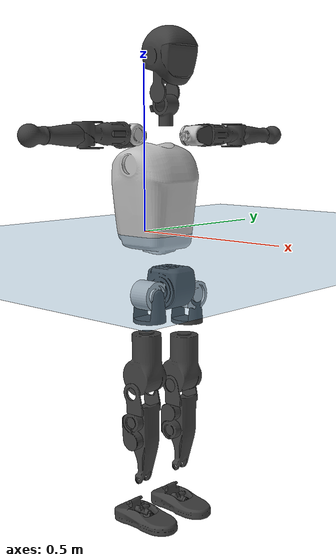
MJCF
<mujoco model="T1">
  <compiler angle="radian" assetdir="assets" balanceinertia="true" inertiafromgeom="false"/>

  <option timestep="0.005" density="1.2" viscosity="2e-05"/>

  <size nkey="1"/>

  <visual>
    <quality shadowsize="8192"/>
    <map shadowclip="0.5"/>
  </visual>

  <default>
    <default class="/">
      <joint armature="0.01" damping="0.01" frictionloss="0.1"/>
      <geom contype="0" conaffinity="0" group="1" solref="-1000 -80"/>
      <site size="0.01 0.005 0.005" group="5"/>
      <general forcelimited="true" biastype="affine" gainprm="25" biasprm="0 -25 -0.6"/>
      <default class="t1">
        <geom rgba="0.25 0.25 0.25 1"/>
        <default class="visual">
          <geom type="mesh" group="2"/>
        </default>
        <default class="collision">
          <geom group="3"/>
        </default>
        <default class="foot">
          <geom size="0.1115 0.05 0.015" type="box" condim="6" group="4" priority="1" solimp="0.015 1 0.015"/>
        </default>
        <default class="reward_collision_sphere">
          <geom group="5" rgba="1 0 0 1"/>
        </default>
      </default>
    </default>
  </default>

  <asset>
    <texture type="skybox" colorspace="auto" name="//unnamed_texture_0" builtin="gradient" rgb1="0.95 0.95 0.95" rgb2="0.95 0.95 0.95" width="100" height="600"/>
    <texture type="2d" colorspace="auto" name="texplane" builtin="checker" rgb1="0.345 0.575 0.748" rgb2="0.345 0.575 0.748" markrgb="1 1 1" width="512" height="512"/>
    <material name="MatPlane" class="/" texture="texplane" texuniform="true" texrepeat="2 2" specular="0.9"/>
    <mesh name="Trunk" class="/" file="Trunk.stl"/>
    <mesh name="H1" class="/" file="H1.stl"/>
    <mesh name="H2" class="/" file="H2.stl"/>
    <mesh name="AL1" class="/" file="AL1.stl"/>
    <mesh name="AL2" class="/" file="AL2.stl"/>
    <mesh name="AL3" class="/" file="AL3.stl"/>
    <mesh name="left_hand_link" class="/" file="left_hand_link.stl"/>
    <mesh name="AR1" class="/" file="AR1.stl"/>
    <mesh name="AR2" class="/" file="AR2.stl"/>
    <mesh name="AR3" class="/" file="AR3.stl"/>
    <mesh name="right_hand_link" class="/" file="right_hand_link.stl"/>
    <mesh name="Waist" class="/" file="Waist.stl"/>
    <mesh name="Hip_Pitch_Left" class="/" file="Hip_Pitch_Left.stl"/>
    <mesh name="Hip_Roll_Left" class="/" file="Hip_Roll_Left.stl"/>
    <mesh name="Hip_Yaw_Left" class="/" file="Hip_Yaw_Left.stl"/>
    <mesh name="Shank_Left" class="/" file="Shank_Left.stl"/>
    <mesh name="Ankle_Cross_Left" class="/" file="Ankle_Cross_Left.stl"/>
    <mesh name="left_foot_link" class="/" file="left_foot_link.stl"/>
    <mesh name="Hip_Pitch_Right" class="/" file="Hip_Pitch_Right.stl"/>
    <mesh name="Hip_Roll_Right" class="/" file="Hip_Roll_Right.stl"/>
    <mesh name="Hip_Yaw_Right" class="/" file="Hip_Yaw_Right.stl"/>
    <mesh name="Shank_Right" class="/" file="Shank_Right.stl"/>
    <mesh name="Ankle_Cross_Right" class="/" file="Ankle_Cross_Right.stl"/>
    <mesh name="right_foot_link" class="/" file="right_foot_link.stl"/>
  </asset>

  <worldbody>
    <geom name="floor" class="/" size="100 100 0.125" type="plane" group="0" material="MatPlane"/>
    <light name="toplight_shadow" class="/" pos="0 0 5" dir="0.0990148 0.0990148 -0.990148" type="directional" ambient="0.04 0.04 0.04" diffuse="0.55 0.55 0.55" specular="0.12 0.12 0.12"/>
    <light name="toplight_fill" class="/" pos="0 0 5" dir="0.0990148 0.0990148 -0.990148" type="directional" castshadow="false" ambient="0.04 0.04 0.04" diffuse="0.3 0.3 0.3" specular="0.08 0.08 0.08"/>
    <body name="trunk" childclass="t1" pos="-0.000560104 -0.00245295 -0.00978335" quat="1 -3.29731e-05 -0.000512141 -0.000371861">
      <inertial pos="0.0767301 0.00789778 0.138866" quat="0.999313 -0.0367253 0.00425333 0.00272373" mass="19.387" diaginertia="0.477307 0.0231605 0.252144"/>
      <joint name="//unnamed_joint_0" type="free" armature="0" damping="0" frictionloss="0"/>
      <geom name="//unnamed_geom_1" class="visual" rgba="0.76 0.76 0.76 1" mesh="Trunk"/>
      <geom name="//unnamed_geom_2" class="collision" size="0.0873042 0.116406 0.174608" pos="0.0840694 0 0.159165" type="box"/>
      <geom name="//unnamed_geom_3" class="reward_collision_sphere" size="0.133867" pos="0.0840694 0 0.132638"/>
      <geom name="//unnamed_geom_4" class="reward_collision_sphere" size="0.0174608" pos="0.0840694 0.0649941 0"/>
      <geom name="//unnamed_geom_5" class="reward_collision_sphere" size="0.0174608" pos="0.0840694 -0.0649941 0"/>
      <geom name="//unnamed_geom_6" class="reward_collision_sphere" size="0.0174608" pos="0.0840694 0.0818161 0.238748"/>
      <geom name="//unnamed_geom_7" class="reward_collision_sphere" size="0.0174608" pos="0.0840694 -0.0818161 0.238748"/>
      <site name="imu" pos="-0.00185969 -0.0570513 0.0273951" size="0.0116406"/>
      <camera name="track" pos="0 -1.52927 0" quat="0.707107 0.707107 0 0" mode="trackcom"/>
      <camera name="ego_camera" pos="0.170941 0 0.557078" quat="-0.5 -0.5 0.5 0.5"/>
      <body name="H1" pos="0.0850239 0.00699379 0.326475" quat="0.999985 0.000456476 0.00143395 -0.00534452">
        <inertial pos="-0.00303894 -2.13008e-06 0.0705511" quat="0.753142 -0.00190361 0.0111327 0.657761" mass="0.842597" diaginertia="0.00148621 5.63521e-05 0.000676755"/>
        <joint name="AAHead_yaw" pos="0 0 0" axis="0.0074537 0.0214716 0.999742" range="-1.68071 1.30595" armature="0.0115933" damping="0.0542128" frictionloss="0.163971"/>
        <geom name="//unnamed_geom_8" class="visual" mesh="H1"/>
        <body name="H2" pos="-0.00326444 -0.00051239 0.096718" quat="0.999974 0.000837508 0.00612523 -0.00360884">
          <inertial pos="0.0165197 -0.00787746 0.121107" quat="0.993455 0.0712057 -0.0662936 -0.0598536" mass="0.977116" diaginertia="0.0106968 0.000470185 0.00730911"/>
          <joint name="Head_pitch" pos="0 0 0" axis="-0.047248 -0.998853 -0.00778597" stiffness="0.040316" range="-1.28136 0.369367" armature="0.0120195" damping="0" frictionloss="0.119631"/>
          <geom name="//unnamed_geom_9" class="visual" mesh="H2"/>
          <geom name="//unnamed_geom_10" class="collision" size="0.0931245" pos="0.0140116 0 0.145901"/>
          <geom name="//unnamed_geom_11" class="reward_collision_sphere" size="0.104765" pos="0.0280231 0 0.132638"/>
        </body>
      </body>
      <body name="AL1" pos="0.0858072 0.0844251 0.299032" quat="1 -4.0808e-05 0.000350669 6.83181e-05">
        <inertial pos="-0.00526243 0.0418456 -0.00147309" quat="0.484837 0.50333 -0.547737 0.459974" mass="0.929617" diaginertia="0.00891074 0.000373831 0.00134358"/>
        <joint name="Left_Shoulder_Pitch" pos="0 0 0" axis="-0.0021116 0.999351 -0.0359631" stiffness="0.0355671" range="-3.56136 1.24851" armature="0.0172253" damping="0.0449259" frictionloss="0.152012"/>
        <geom name="//unnamed_geom_12" class="visual" rgba="0.76 0.76 0.76 1" mesh="AL1"/>
        <body name="AL2" pos="0.00508962 0.0370957 0.000962701" quat="0.999982 -0.00234656 0.00445913 -0.00326915">
          <inertial pos="-0.00821318 0.0218917 -0.000806581" quat="0.458662 0.52311 -0.504743 0.511096" mass="0.288173" diaginertia="0.00246025 0.000104422 0.000808565"/>
          <joint name="Left_Shoulder_Roll" pos="0 0 0" axis="-0.999971 -0.00562531 -0.00506789" stiffness="0.0113027" range="-1.59058 1.79441" armature="0.00676178" damping="0" frictionloss="0.124506"/>
          <geom name="//unnamed_geom_13" class="visual" mesh="AL2"/>
          <body name="AL3" pos="0.00893003 0.0518809 0.000572102" quat="0.999983 0.000886567 -0.0056842 8.27638e-05">
            <inertial pos="-0.0125984 0.0627776 -0.00673606" quat="0.723187 0.687564 0.0297923 -0.0580453" mass="1.32725" diaginertia="0.0601763 0.00226257 0.0020988"/>
            <joint name="Left_Elbow_Pitch" pos="0 0 0" axis="-0.0144047 -0.999835 -0.0110519" range="-2.26958 1.9998" armature="0.00582478" damping="0.00798282" frictionloss="0.0378702"/>
            <geom name="//unnamed_geom_14" class="visual" mesh="AL3"/>
            <geom name="//unnamed_geom_15" class="collision" size="0.0349217 0.0873042" pos="0 0.0382318 0" quat="0.707105 0.707108 0 0" type="cylinder"/>
            <geom name="//unnamed_geom_16" class="reward_collision_sphere" size="0.041906"/>
            <body name="left_hand_link" pos="0.00826926 0.106926 -0.00113149" quat="0.999978 0.000184225 0.00309152 -0.00584405">
              <inertial pos="0.00258633 0.0745442 0.000333251" quat="0.705581 0.708449 0.00153549 -0.0159223" mass="0.568779" diaginertia="0.0375764 0.00188902 0.00102231"/>
              <joint name="Left_Elbow_Yaw" pos="0 0 0" axis="0.047007 0.0278519 0.998506" range="-2.30559 -0.268222" armature="0.0172863" damping="0.0635402" frictionloss="0.076336"/>
              <geom name="//unnamed_geom_17" class="visual" mesh="left_hand_link"/>
              <geom name="//unnamed_geom_18" class="collision" size="0.0349217 0.101855" pos="0 0.0994028 0" quat="0.707105 0.707108 0 0" type="cylinder"/>
              <geom name="//unnamed_geom_19" class="reward_collision_sphere" size="0.0582028"/>
              <geom name="//unnamed_geom_20" class="reward_collision_sphere" size="0.040742" pos="0 0.08411 0"/>
              <geom name="//unnamed_geom_21" class="reward_collision_sphere" size="0.040742" pos="0 0.164397 0"/>
            </body>
          </body>
        </body>
      </body>
      <body name="AR1" pos="0.082611 -0.0911501 0.30268" quat="1 0.00031264 0.000224008 0.000185626">
        <inertial pos="0.000535955 -0.0232937 0.000797611" quat="0.502617 0.510532 -0.503105 0.483341" mass="0.756538" diaginertia="0.00730354 0.000364606 0.00119028"/>
        <joint name="Right_Shoulder_Pitch" pos="0 0 0" axis="0.0626776 -0.997602 -0.02936" stiffness="0.0315007" range="-1.23495 3.0604" armature="0.0130292" damping="0" frictionloss="0.191374"/>
        <geom name="//unnamed_geom_22" class="visual" rgba="0.76 0.76 0.76 1" mesh="AR1"/>
        <body name="AR2" pos="-0.0141527 -0.023572 -0.00354903" quat="1 8.65825e-05 6.70695e-05 -4.89504e-05">
          <inertial pos="-0.00419053 -0.028221 -0.000288113" quat="0.519303 0.498585 -0.511331 0.469337" mass="0.179735" diaginertia="0.00180154 8.27889e-05 0.000614038"/>
          <joint name="Right_Shoulder_Roll" pos="0 0 0" axis="-0.998555 -0.0529909 -0.00895188" stiffness="0.0513641" range="-1.70732 1.38027" armature="0.0128812" damping="0.0616531" frictionloss="0.0553301"/>
          <geom name="//unnamed_geom_23" class="visual" mesh="AR2"/>
          <body name="AR3" pos="0.0110477 -0.0490776 0.00627083" quat="0.999994 -0.000181468 -0.00251688 -0.00249577">
            <inertial pos="-0.00140204 -0.0753063 0.00148317" quat="0.713388 0.700184 0.00630459 0.0279134" mass="1.14752" diaginertia="0.0569025 0.00268325 0.00204518"/>
            <joint name="Right_Elbow_Pitch" pos="0 0 0" axis="-0.00355534 0.999992 -0.00206072" stiffness="0.0731064" range="-2.06977 2.48941" armature="0.0120647" damping="0.0167538" frictionloss="0.108975"/>
            <geom name="//unnamed_geom_24" class="visual" mesh="AR3"/>
            <geom name="//unnamed_geom_25" class="collision" size="0.0349217 0.0873042" pos="0 -0.0382318 0" quat="0.707105 0.707108 0 0" type="cylinder"/>
            <geom name="//unnamed_geom_26" class="reward_collision_sphere" size="0.041906"/>
            <body name="right_hand_link" pos="-0.0030121 -0.110498 -0.00334227" quat="1 -0.000364375 0.000203724 1.56409e-05">
              <inertial pos="0.00120223 -0.0831714 0.0137763" quat="0.695337 0.717632 -0.0245571 -0.030123" mass="0.665949" diaginertia="0.0477141 0.00239995 0.000982938"/>
              <joint name="Right_Elbow_Yaw" pos="0 0 0" axis="0.0364832 -0.0264282 0.998985" range="-0.104716 2.2155" armature="0.0130536" damping="0.0146746" frictionloss="0.12115"/>
              <geom name="//unnamed_geom_27" class="visual" mesh="right_hand_link"/>
              <geom name="//unnamed_geom_28" class="collision" size="0.0349217 0.101855" pos="0 -0.0994028 0" quat="0.707105 0.707108 0 0" type="cylinder"/>
              <geom name="//unnamed_geom_29" class="reward_collision_sphere" size="0.0582028"/>
              <geom name="//unnamed_geom_30" class="reward_collision_sphere" size="0.040742" pos="0 -0.08411 0"/>
              <geom name="//unnamed_geom_31" class="reward_collision_sphere" size="0.040742" pos="0 -0.164397 0"/>
            </body>
          </body>
        </body>
      </body>
      <body name="Waist" pos="0.102404 0.0109977 -0.156173" quat="0.999987 0.000644815 -0.00491042 0.000714295">
        <inertial pos="0.00265383 0.0099694 0.00788849" quat="0.983424 0.000603135 -0.181287 0.00354826" mass="4.21777" diaginertia="0.0347737 0.00162598 0.0244053"/>
        <joint name="Waist" pos="0 0 0" axis="-0.0287414 -0.0284742 0.999181" range="-1.58542 1.56742" armature="0.00897936" damping="0.0312168" frictionloss="0.190139"/>
        <geom name="//unnamed_geom_32" class="visual" mesh="Waist"/>
        <body name="Hip_Pitch_Left" pos="-0.00534743 0.0934204 -0.01014" quat="0.999986 -0.00112271 0.00443304 -0.00261897">
          <inertial pos="0.00149297 -0.00229644 -0.0256874" quat="0.967255 0.253079 0.0175151 0.00782061" mass="1.60922" diaginertia="0.0109112 0.000342851 0.00600117"/>
          <joint name="Left_Hip_Pitch" pos="0 0 0" axis="-0.011683 0.999899 0.00804137" stiffness="0.0610998" range="-1.76908 1.48628" armature="0.0137063" damping="0.00179244" frictionloss="0.0857591"/>
          <geom name="//unnamed_geom_33" class="visual" rgba="0.76 0.76 0.76 1" mesh="Hip_Pitch_Left"/>
          <body name="Hip_Roll_Left" pos="-0.0116199 0.00141605 -0.0340342" quat="0.999974 -0.00474739 0.000186286 -0.00534817">
            <inertial pos="0.0138565 0.0104822 -0.0750182" quat="0.693 0.0446652 -0.0494954 0.717849" mass="0.586719" diaginertia="0.0103611 0.000374966 0.00215948"/>
            <joint name="Left_Hip_Roll" pos="0 0 0" axis="-0.997486 -0.0321149 -0.0631719" range="-1.37854 -0.0417281" armature="0.00531952" damping="0" frictionloss="0.120261"/>
            <geom name="//unnamed_geom_34" class="visual" mesh="Hip_Roll_Left"/>
            <geom name="//unnamed_geom_35" class="reward_collision_sphere" size="0.0640231"/>
            <body name="Hip_Yaw_Left" pos="-0.0147134 0.000990834 -0.119516" quat="0.99998 0.00579905 -0.00053791 -0.00244263">
              <inertial pos="-0.012305 0.00104252 -0.111524" quat="0.695693 -0.0252623 -0.0260535 0.717422" mass="3.56864" diaginertia="0.160783 0.00683568 0.00971467"/>
              <joint name="Left_Hip_Yaw" pos="0 0 0" axis="0.0296008 0.0146064 -0.999455" range="-1.07095 1.26222" armature="0.0107658" damping="0.0168246" frictionloss="0.0789093"/>
              <geom name="//unnamed_geom_36" class="visual" mesh="Hip_Yaw_Left"/>
              <geom name="//unnamed_geom_37" class="collision" size="0.0582028 0.0931245" type="cylinder"/>
              <body name="Shank_Left" pos="-0.0253182 0.00449715 -0.164372" quat="1 -0.000138921 4.37981e-05 -5.1714e-05">
                <inertial pos="-0.018982 0.0114797 -0.165971" quat="0.997247 -0.0112891 -0.0256331 0.0686577" mass="2.82947" diaginertia="0.189783 0.00960431 0.00708483"/>
                <joint name="Left_Knee_Pitch" pos="0 0 0" axis="0.0229467 0.999492 0.0221191" range="-0.147769 2.22385" armature="0.0123291" damping="0.00331629" frictionloss="0.109597"/>
                <geom name="//unnamed_geom_38" class="visual" mesh="Shank_Left"/>
                <geom name="//unnamed_geom_39" class="collision" size="0.0582028 0.0873042" pos="0 0 -0.159165" type="cylinder"/>
                <geom name="//unnamed_geom_40" class="reward_collision_sphere" size="0.0756637"/>
                <body name="Ankle_Cross_Left" pos="0.00146405 0.00354787 -0.384145" quat="0.999994 0.00298221 0.00100581 -0.0017175">
                  <inertial pos="-0.0145298 -0.00449149 -0.00358706" quat="0.440421 0.551247 0.551004 0.44559" mass="0.103807" diaginertia="0.000152734 7.61145e-06 4.95215e-05"/>
                  <joint name="Left_Ankle_Pitch" pos="0 0 0" axis="-0.0304997 0.999514 -0.00641056" range="-0.786444 0.259973" armature="0.0111201" damping="0" frictionloss="0.169875"/>
                  <geom name="//unnamed_geom_41" class="visual" mesh="Ankle_Cross_Left"/>
                  <body name="left_foot_link" pos="0.00254662 -0.00699302 -0.00997757" quat="0.999999 -0.000667527 -0.00067141 -0.00129204">
                    <inertial pos="-0.00520399 -0.0103428 -0.0127144" quat="0.0205698 0.615894 -0.035376 0.786766" mass="1.18552" diaginertia="0.0113585 0.000539335 0.00785987"/>
                    <joint name="Left_Ankle_Roll" pos="0 0 0" axis="-0.99922 -0.0111371 -0.0378978" range="-0.349594 0.186737" armature="0.00429068" damping="0.00648306" frictionloss="0.0883432"/>
                    <geom name="//unnamed_geom_42" class="visual" mesh="left_foot_link"/>
                    <geom name="left_foot" class="foot" size="0.104508 0.0679853 0.0198308" pos="0.0140116 0 -0.0198956"/>
                    <geom name="//unnamed_geom_44" class="reward_collision_sphere" size="0.0605309" pos="0.0140116 0 -0.0198956"/>
                    <geom name="//unnamed_geom_45" class="reward_collision_sphere" size="0.0349217" pos="0.13311 -0.0175866 -0.0198956"/>
                    <geom name="//unnamed_geom_46" class="reward_collision_sphere" size="0.0349217" pos="-0.098081 -0.0175866 -0.0198956"/>
                    <site name="left_foot" class="foot" pos="0.0140116 0 -0.0198956" size="0.0116406"/>
                  </body>
                </body>
              </body>
            </body>
          </body>
        </body>
        <body name="Hip_Pitch_Right" pos="-0.0109134 -0.0859769 0.00974353" quat="1 3.36167e-05 9.41013e-06 1.47315e-05">
          <inertial pos="0.0122991 0.00308078 -0.0235596" quat="0.974934 -0.220083 0.0101367 0.031068" mass="1.86005" diaginertia="0.0103906 0.000406336 0.00555955"/>
          <joint name="Right_Hip_Pitch" pos="0 0 0" axis="-0.0150612 -0.999802 -0.0130224" stiffness="0.0319528" range="-1.62835 1.94881" armature="0.00354351" damping="0.0073118" frictionloss="0.154721"/>
          <geom name="//unnamed_geom_47" class="visual" rgba="0.76 0.76 0.76 1" mesh="Hip_Pitch_Right"/>
          <body name="Hip_Roll_Right" pos="-0.00287065 0.00717975 -0.0249511" quat="1 -0.000478106 -0.000182301 -0.000152434">
            <inertial pos="0.00164839 0.0127327 -0.061696" quat="0.737625 -0.043999 -0.00258908 0.67377" mass="0.696998" diaginertia="0.0109109 0.000470518 0.0025172"/>
            <joint name="Right_Hip_Roll" pos="0 0 0" axis="-0.999973 0.00116727 -0.00726979" stiffness="0.0190155" range="-0.18393 1.54036" armature="0.0111517" damping="0" frictionloss="0.174273"/>
            <geom name="//unnamed_geom_48" class="visual" mesh="Hip_Roll_Right"/>
            <geom name="//unnamed_geom_49" class="reward_collision_sphere" size="0.0640231"/>
            <body name="Hip_Yaw_Right" pos="-0.010688 -0.00542288 -0.112535" quat="0.999989 0.00133224 -0.00200026 0.0040264">
              <inertial pos="-0.0106126 0.0140827 -0.124489" quat="0.714567 -0.0548155 -0.0427234 0.696107" mass="3.66419" diaginertia="0.161754 0.00769498 0.0131606"/>
              <joint name="Right_Hip_Yaw" pos="0 0 0" axis="0.0314702 -0.0212422 -0.999279" range="-0.858775 0.788209" armature="0.0131558" damping="0" frictionloss="0.115331"/>
              <geom name="//unnamed_geom_50" class="visual" mesh="Hip_Yaw_Right"/>
              <geom name="//unnamed_geom_51" class="collision" size="0.0582028 0.0931245" type="cylinder"/>
              <body name="Shank_Right" pos="-0.0207891 -0.00730498 -0.181524" quat="1 0.000422107 -0.00037673 -0.000238126">
                <inertial pos="-0.00916368 -0.00161538 -0.156766" quat="0.998815 -0.00496761 -0.0216341 -0.0433027" mass="3.16076" diaginertia="0.254212 0.0109693 0.00907184"/>
                <joint name="Right_Knee_Pitch" pos="0 0 0" axis="0.0176496 -0.999843 -0.00144246" stiffness="0.05536" range="-2.47643 -0.114595" armature="0.0120886" damping="0" frictionloss="0.11942"/>
                <geom name="//unnamed_geom_52" class="visual" mesh="Shank_Right"/>
                <geom name="//unnamed_geom_53" class="collision" size="0.0582028 0.0873042" pos="0 0 -0.159165" type="cylinder"/>
                <geom name="//unnamed_geom_54" class="reward_collision_sphere" size="0.0756637"/>
                <body name="Ankle_Cross_Right" pos="0.00498068 -0.0012003 -0.374772" quat="0.999986 0.00233818 0.00419337 -0.0022029">
                  <inertial pos="-0.00194885 0.0009555 0.00198237" quat="0.420671 0.517578 0.601648 0.43951" mass="0.130601" diaginertia="0.000210843 6.71193e-06 6.20315e-05"/>
                  <joint name="Right_Ankle_Pitch" pos="0 0 0" axis="0.0116934 -0.998619 -0.05122" stiffness="0.0528471" range="-0.531486 0.767658" armature="0.0125584" damping="0.0542096" frictionloss="0.176379"/>
                  <geom name="//unnamed_geom_55" class="visual" mesh="Ankle_Cross_Right"/>
                  <body name="right_foot_link" pos="0.000675776 -0.00038285 -0.0207375" quat="0.999996 0.000906264 -0.00195037 0.00157839">
                    <inertial pos="0.0139549 0.00909059 -0.0106238" quat="0.0358234 0.603006 -0.0178339 0.796732" mass="1.06504" diaginertia="0.0153152 0.000647376 0.0104192"/>
                    <joint name="Right_Ankle_Roll" pos="0 0 0" axis="-0.999981 0.00109429 0.00601812" range="-0.384479 0.430626" armature="0.0077207" damping="0" frictionloss="0.118828"/>
                    <geom name="//unnamed_geom_56" class="visual" mesh="right_foot_link"/>
                    <geom name="right_foot" class="foot" size="0.0921509 0.0432638 0.0162752" pos="0.0140116 0 -0.0198956"/>
                    <geom name="//unnamed_geom_58" class="reward_collision_sphere" size="0.0465623"/>
                    <geom name="//unnamed_geom_59" class="reward_collision_sphere" size="0.0349217" pos="0.0140116 0 -0.0198956"/>
                    <geom name="//unnamed_geom_60" class="reward_collision_sphere" size="0.0349217" pos="0.13311 0.0175866 -0.0198956"/>
                    <geom name="//unnamed_geom_61" class="reward_collision_sphere" size="0.0349217" pos="-0.098081 0.0175866 -0.0198956"/>
                    <site name="right_foot" class="foot" pos="0.0140116 0 -0.0198956" size="0.0116406"/>
                  </body>
                </body>
              </body>
            </body>
          </body>
        </body>
      </body>
    </body>
  </worldbody>

  <contact>
    <pair class="/" geom1="floor" geom2="left_foot" name="//unnamed_contact_0"/>
    <pair class="/" geom1="floor" geom2="right_foot" name="//unnamed_contact_1"/>
  </contact>

  <actuator>
    <general name="AAHead_yaw" class="/" joint="AAHead_yaw" forcerange="-5.44547 5.44547" gainprm="28.0534" biasprm="0 -28.0534 -0.836512"/>
    <general name="Head_pitch" class="/" joint="Head_pitch" forcerange="-5.28983 5.28983" gainprm="28.0534" biasprm="0 -28.0534 -0.836512"/>
    <general name="Left_Shoulder_Pitch" class="/" joint="Left_Shoulder_Pitch" forcerange="-25.1415 25.1415" gainprm="28.0534" biasprm="0 -28.0534 -0.836512"/>
    <general name="Left_Shoulder_Roll" class="/" joint="Left_Shoulder_Roll" forcerange="-19.3768 19.3768" gainprm="28.0534" biasprm="0 -28.0534 -0.836512"/>
    <general name="Left_Elbow_Pitch" class="/" joint="Left_Elbow_Pitch" forcerange="-11.3704 11.3704" gainprm="28.0534" biasprm="0 -28.0534 -0.836512"/>
    <general name="Left_Elbow_Yaw" class="/" joint="Left_Elbow_Yaw" forcerange="-27.6684 27.6684" gainprm="28.0534" biasprm="0 -28.0534 -0.836512"/>
    <general name="Right_Shoulder_Pitch" class="/" joint="Right_Shoulder_Pitch" forcerange="-31.3707 31.3707" gainprm="28.0534" biasprm="0 -28.0534 -0.836512"/>
    <general name="Right_Shoulder_Roll" class="/" joint="Right_Shoulder_Roll" forcerange="-20.3376 20.3376" gainprm="28.0534" biasprm="0 -28.0534 -0.836512"/>
    <general name="Right_Elbow_Pitch" class="/" joint="Right_Elbow_Pitch" forcerange="-11.1132 11.1132" gainprm="28.0534" biasprm="0 -28.0534 -0.836512"/>
    <general name="Right_Elbow_Yaw" class="/" joint="Right_Elbow_Yaw" forcerange="-16.6121 16.6121" gainprm="28.0534" biasprm="0 -28.0534 -0.836512"/>
    <general name="Waist" class="/" joint="Waist" forcerange="-39.0946 39.0946" gainprm="28.0534" biasprm="0 -28.0534 -0.836512"/>
    <general name="Left_Hip_Pitch" class="/" joint="Left_Hip_Pitch" forcerange="-61.9311 61.9311" gainprm="28.0534" biasprm="0 -28.0534 -0.836512"/>
    <general name="Left_Hip_Roll" class="/" joint="Left_Hip_Roll" forcerange="-19.5331 19.5331" gainprm="28.0534" biasprm="0 -28.0534 -0.836512"/>
    <general name="Left_Hip_Yaw" class="/" joint="Left_Hip_Yaw" forcerange="-53.1296 53.1296" gainprm="28.0534" biasprm="0 -28.0534 -0.836512"/>
    <general name="Left_Knee_Pitch" class="/" joint="Left_Knee_Pitch" forcerange="-43.729 43.729" gainprm="28.0534" biasprm="0 -28.0534 -0.836512"/>
    <general name="Left_Ankle_Pitch" class="/" joint="Left_Ankle_Pitch" forcerange="-36.3203 36.3203" gainprm="28.0534" biasprm="0 -28.0534 -0.836512"/>
    <general name="Left_Ankle_Roll" class="/" joint="Left_Ankle_Roll" forcerange="-17.6602 17.6602" gainprm="28.0534" biasprm="0 -28.0534 -0.836512"/>
    <general name="Right_Hip_Pitch" class="/" joint="Right_Hip_Pitch" forcerange="-54.7024 54.7024" gainprm="28.0534" biasprm="0 -28.0534 -0.836512"/>
    <general name="Right_Hip_Roll" class="/" joint="Right_Hip_Roll" forcerange="-44.6136 44.6136" gainprm="28.0534" biasprm="0 -28.0534 -0.836512"/>
    <general name="Right_Hip_Yaw" class="/" joint="Right_Hip_Yaw" forcerange="-44.5693 44.5693" gainprm="28.0534" biasprm="0 -28.0534 -0.836512"/>
    <general name="Right_Knee_Pitch" class="/" joint="Right_Knee_Pitch" forcerange="-41.1152 41.1152" gainprm="28.0534" biasprm="0 -28.0534 -0.836512"/>
    <general name="Right_Ankle_Pitch" class="/" joint="Right_Ankle_Pitch" forcerange="-16.4613 16.4613" gainprm="28.0534" biasprm="0 -28.0534 -0.836512"/>
    <general name="Right_Ankle_Roll" class="/" joint="Right_Ankle_Roll" forcerange="-25.7115 25.7115" gainprm="28.0534" biasprm="0 -28.0534 -0.836512"/>
  </actuator>

  <sensor>
    <gyro site="imu" name="imu_angular_velocity"/>
    <velocimeter site="imu" name="imu_linear_velocity"/>
    <framelinvel objtype="site" objname="left_foot" name="left_foot_global_linear_velocity"/>
    <framelinvel objtype="site" objname="right_foot" name="right_foot_global_linear_velocity"/>
  </sensor>

  <keyframe>
    <key name="home" qpos="0 0 0.6385 1 0 0 0 0 0 0 1.4 0 -0.4 0 -1.4 0 0.4 0 -0.4 0 0 0.8 -0.4 0 0.4 0 0 -0.8 0.4 0"/>
  </keyframe>
</mujoco>
